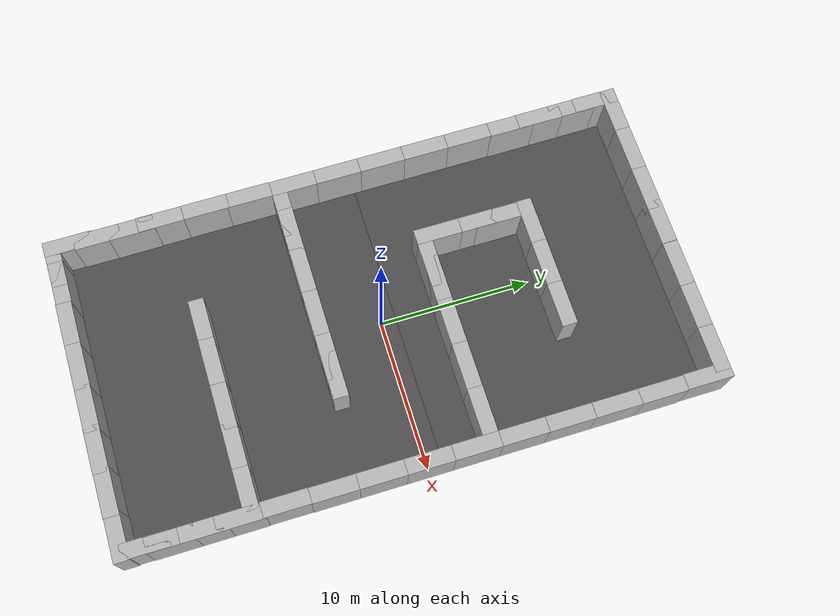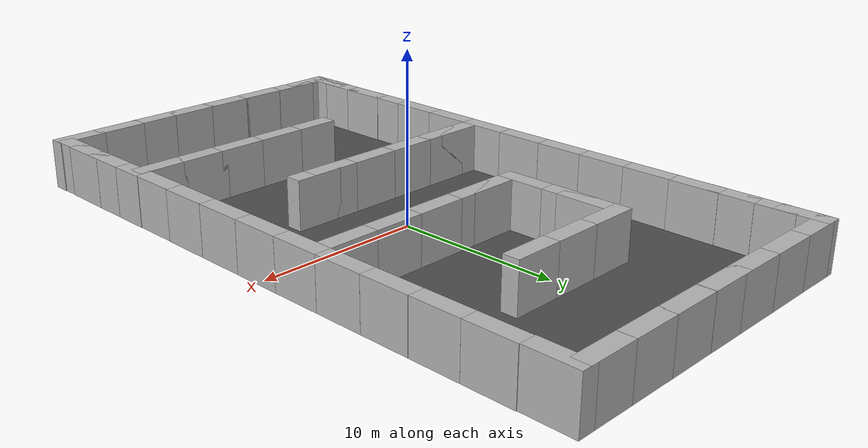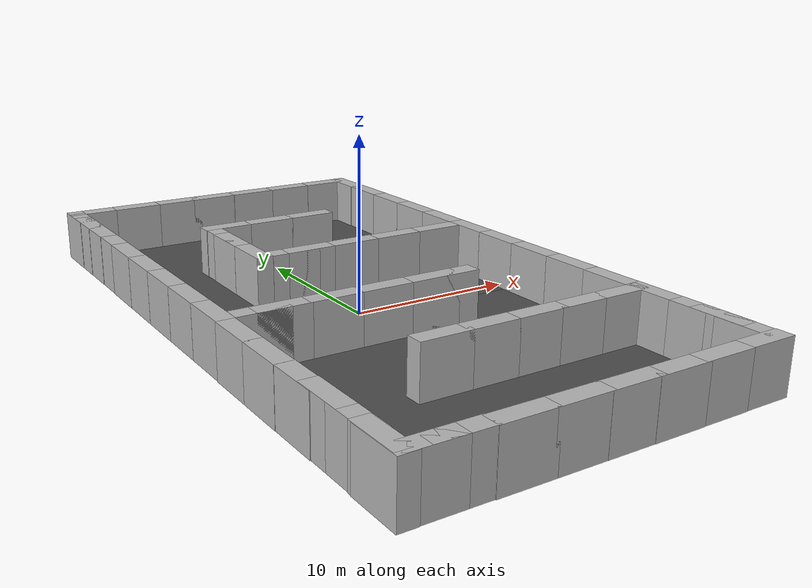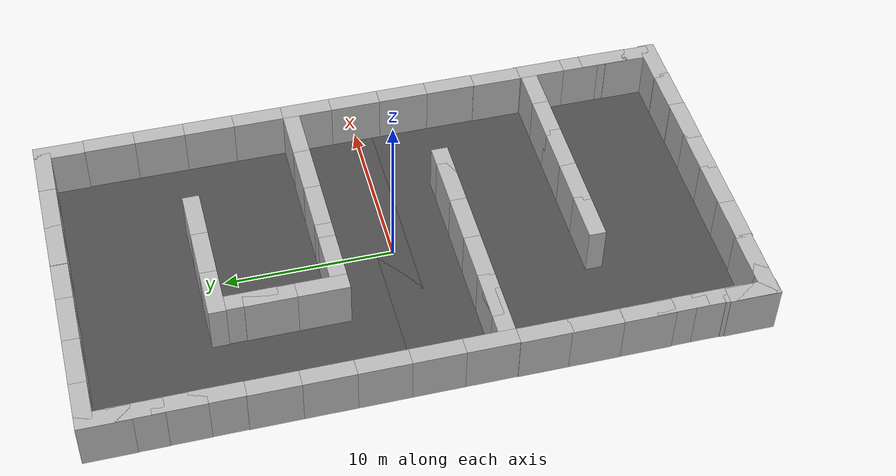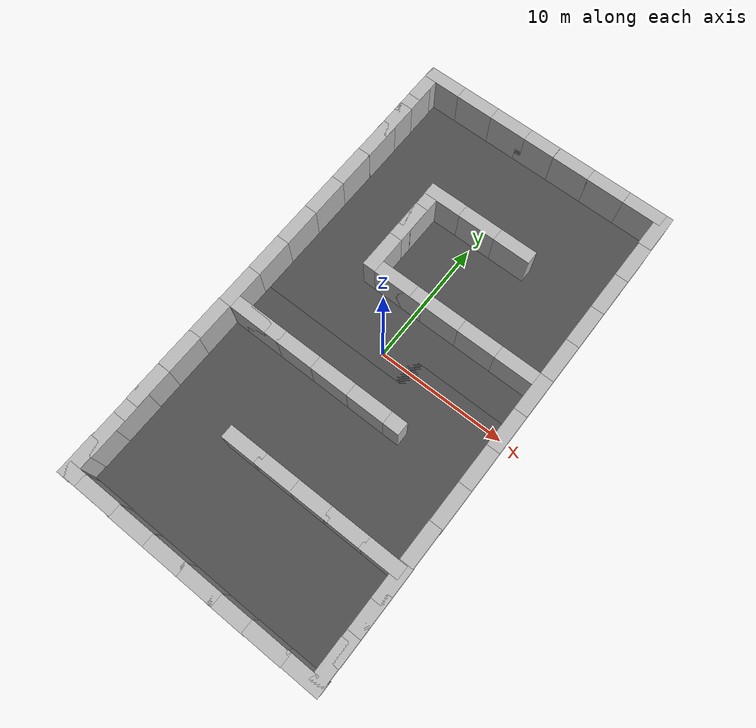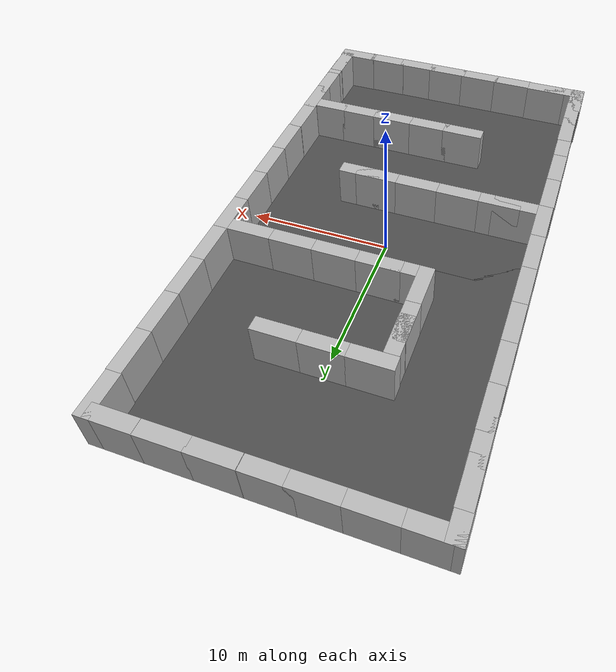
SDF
<sdf version="1.6">
 <world name="default">
  <light name="sun" type="directional">
   <pose>0 0 10 0 -0 0</pose>
   <diffuse>0.8 0.8 0.8 1</diffuse>
   <specular>0.2 0.2 0.2 1</specular>
   <attenuation>
    <range>1000</range>
    <constant>0.9</constant>
    <linear>0.01</linear>
    <quadratic>0.001</quadratic>
   </attenuation>
   <direction>-0.5 0.1 -0.9</direction>
  </light>
  <scene><ambient>0.4 0.4 0.4 1</ambient><background>0.7 0.7 0.7 1</background><shadows>1</shadows></scene>
  <spherical_coordinates>
   <surface_model>EARTH_WGS84</surface_model>
   <latitude_deg>0</latitude_deg>
   <longitude_deg>0</longitude_deg>
   <elevation>0</elevation>
   <heading_deg>0</heading_deg>
  </spherical_coordinates>
  <plugin name="ros_interface_plugin" filename="librotors_gazebo_ros_interface_plugin.so"/>
  <gravity>0 0 -9.8</gravity>
  <magnetic_field>6e-06 2.3e-05 -4.2e-05</magnetic_field>
  <atmosphere type="adiabatic"/>
  <audio><device>default</device></audio>
  <physics name="default_physics" default="0" type="ode">
   <max_step_size>0.001</max_step_size>
   <real_time_factor>1</real_time_factor>
   <real_time_update_rate>1000</real_time_update_rate>
  </physics>
  <model name="asphalt_plane_clone_clone_clone_0_clone">
   <static>1</static>
   <link name="link">
    <collision name="collision"><geometry><box><size>20 20 0.1</size></box></geometry></collision>
    <visual name="visual">
     <cast_shadows>0</cast_shadows>
     <geometry><box><size>20 20 0.1</size></box></geometry>
     <material>
      <script>
       <uri>model://asphalt_plane/materials/scripts</uri>
       <uri>model://asphalt_plane/materials/textures</uri>
       <name>vrc/asphalt</name>
      </script>
     </material>
    </visual>
    <velocity_decay><linear>0</linear><angular>0</angular></velocity_decay>
   </link>
   <pose>0 9 0 0 -0 0</pose>
  </model>
  <model name="brick_box_3x1x3_14_clone_3_clone_clone_2">
   <static>1</static>
   <link name="chassis">
    <pose>0 0 1.5 0 -0 0</pose>
    <collision name="collision"><geometry><box><size>3 1 3</size></box></geometry></collision>
    <visual name="visual">
     <geometry><mesh><uri>model://brick_box_3x1x3/meshes/simple_box.dae</uri><scale>3 1 3</scale></mesh></geometry>
     <material>
      <script>
       <uri>model://brick_box_3x1x3/materials/scripts</uri>
       <uri>model://brick_box_3x1x3/materials/textures</uri>
       <name>BrickBox/Diffuse</name>
      </script>
     </material>
    </visual>
    <velocity_decay><linear>0</linear><angular>0</angular></velocity_decay>
   </link>
   <pose>10 0 0 0 -0 1.57</pose>
  </model>
  <model name="brick_box_3x1x3_14_clone_3_clone_clone_7">
   <static>1</static>
   <link name="chassis">
    <pose>0 0 1.5 0 -0 0</pose>
    <collision name="collision"><geometry><box><size>3 1 3</size></box></geometry></collision>
    <visual name="visual">
     <geometry><mesh><uri>model://brick_box_3x1x3/meshes/simple_box.dae</uri><scale>3 1 3</scale></mesh></geometry>
     <material>
      <script>
       <uri>model://brick_box_3x1x3/materials/scripts</uri>
       <uri>model://brick_box_3x1x3/materials/textures</uri>
       <name>BrickBox/Diffuse</name>
      </script>
     </material>
    </visual>
    <velocity_decay><linear>0</linear><angular>0</angular></velocity_decay>
   </link>
   <pose>-10 6 0 0 -0 1.57</pose>
  </model>
  <model name="brick_box_3x1x3_14_clone_3_clone_clone_7_clone">
   <static>1</static>
   <link name="chassis">
    <pose>0 0 1.5 0 -0 0</pose>
    <collision name="collision"><geometry><box><size>3 1 3</size></box></geometry></collision>
    <visual name="visual">
     <geometry><mesh><uri>model://brick_box_3x1x3/meshes/simple_box.dae</uri><scale>3 1 3</scale></mesh></geometry>
     <material>
      <script>
       <uri>model://brick_box_3x1x3/materials/scripts</uri>
       <uri>model://brick_box_3x1x3/materials/textures</uri>
       <name>BrickBox/Diffuse</name>
      </script>
     </material>
    </visual>
    <velocity_decay><linear>0</linear><angular>0</angular></velocity_decay>
   </link>
   <pose>-10 3 0 0 -0 1.57</pose>
  </model>
  <model name="brick_box_3x1x3_14_clone_3_clone_clone_7_clone_0">
   <static>1</static>
   <link name="chassis">
    <pose>0 0 1.5 0 -0 0</pose>
    <collision name="collision"><geometry><box><size>3 1 3</size></box></geometry></collision>
    <visual name="visual">
     <geometry><mesh><uri>model://brick_box_3x1x3/meshes/simple_box.dae</uri><scale>3 1 3</scale></mesh></geometry>
     <material>
      <script>
       <uri>model://brick_box_3x1x3/materials/scripts</uri>
       <uri>model://brick_box_3x1x3/materials/textures</uri>
       <name>BrickBox/Diffuse</name>
      </script>
     </material>
    </visual>
    <velocity_decay><linear>0</linear><angular>0</angular></velocity_decay>
   </link>
   <pose>-10 0 0 0 -0 1.57</pose>
  </model>
  <model name="brick_box_3x1x3_14_clone_3_clone_clone_7_clone_1">
   <static>1</static>
   <link name="chassis">
    <pose>0 0 1.5 0 -0 0</pose>
    <collision name="collision"><geometry><box><size>3 1 3</size></box></geometry></collision>
    <visual name="visual">
     <geometry><mesh><uri>model://brick_box_3x1x3/meshes/simple_box.dae</uri><scale>3 1 3</scale></mesh></geometry>
     <material>
      <script>
       <uri>model://brick_box_3x1x3/materials/scripts</uri>
       <uri>model://brick_box_3x1x3/materials/textures</uri>
       <name>BrickBox/Diffuse</name>
      </script>
     </material>
    </visual>
    <velocity_decay><linear>0</linear><angular>0</angular></velocity_decay>
   </link>
   <pose>-10 -3 0 0 -0 1.57</pose>
  </model>
  <model name="brick_box_3x1x3_0_clone_5_clone_5_clone_0_clone_clone">
   <static>1</static>
   <link name="chassis">
    <pose>0 0 1.5 0 -0 0</pose>
    <collision name="collision"><geometry><box><size>3 1 3</size></box></geometry></collision>
    <visual name="visual">
     <geometry><mesh><uri>model://brick_box_3x1x3/meshes/simple_box.dae</uri><scale>3 1 3</scale></mesh></geometry>
     <material>
      <script>
       <uri>model://brick_box_3x1x3/materials/scripts</uri>
       <uri>model://brick_box_3x1x3/materials/textures</uri>
       <name>BrickBox/Diffuse</name>
      </script>
     </material>
    </visual>
    <velocity_decay><linear>0</linear><angular>0</angular></velocity_decay>
   </link>
   <pose>-1 4 0 0 -0 0</pose>
  </model>
  <model name="brick_box_3x1x3_0_clone_5_clone_5_clone_0_clone_clone_0">
   <static>1</static>
   <link name="chassis">
    <pose>0 0 1.5 0 -0 0</pose>
    <collision name="collision"><geometry><box><size>3 1 3</size></box></geometry></collision>
    <visual name="visual">
     <geometry><mesh><uri>model://brick_box_3x1x3/meshes/simple_box.dae</uri><scale>3 1 3</scale></mesh></geometry>
     <material>
      <script>
       <uri>model://brick_box_3x1x3/materials/scripts</uri>
       <uri>model://brick_box_3x1x3/materials/textures</uri>
       <name>BrickBox/Diffuse</name>
      </script>
     </material>
    </visual>
    <velocity_decay><linear>0</linear><angular>0</angular></velocity_decay>
   </link>
   <pose>2 4 0 0 -0 0</pose>
  </model>
  <model name="brick_box_3x1x3_0_clone_5_clone_5_clone_0_clone_clone_1">
   <static>1</static>
   <link name="chassis">
    <pose>0 0 1.5 0 -0 0</pose>
    <collision name="collision"><geometry><box><size>3 1 3</size></box></geometry></collision>
    <visual name="visual">
     <geometry><mesh><uri>model://brick_box_3x1x3/meshes/simple_box.dae</uri><scale>3 1 3</scale></mesh></geometry>
     <material>
      <script>
       <uri>model://brick_box_3x1x3/materials/scripts</uri>
       <uri>model://brick_box_3x1x3/materials/textures</uri>
       <name>BrickBox/Diffuse</name>
      </script>
     </material>
    </visual>
    <velocity_decay><linear>0</linear><angular>0</angular></velocity_decay>
   </link>
   <pose>5 4 0 0 -0 0</pose>
  </model>
  <model name="brick_box_3x1x3_0_clone_5_clone_5_clone_3_clone_3_clone">
   <static>1</static>
   <link name="chassis">
    <pose>0 0 1.5 0 -0 0</pose>
    <collision name="collision"><geometry><box><size>3 1 3</size></box></geometry></collision>
    <visual name="visual">
     <geometry><mesh><uri>model://brick_box_3x1x3/meshes/simple_box.dae</uri><scale>3 1 3</scale></mesh></geometry>
     <material>
      <script>
       <uri>model://brick_box_3x1x3/materials/scripts</uri>
       <uri>model://brick_box_3x1x3/materials/textures</uri>
       <name>BrickBox/Diffuse</name>
      </script>
     </material>
    </visual>
    <velocity_decay><linear>0</linear><angular>0</angular></velocity_decay>
   </link>
   <pose>-1 -4 0 0 -0 0</pose>
  </model>
  <model name="brick_box_3x1x3_0_clone_5_clone_5_clone_3_clone_3_clone_0">
   <static>1</static>
   <link name="chassis">
    <pose>0 0 1.5 0 -0 0</pose>
    <collision name="collision"><geometry><box><size>3 1 3</size></box></geometry></collision>
    <visual name="visual">
     <geometry><mesh><uri>model://brick_box_3x1x3/meshes/simple_box.dae</uri><scale>3 1 3</scale></mesh></geometry>
     <material>
      <script>
       <uri>model://brick_box_3x1x3/materials/scripts</uri>
       <uri>model://brick_box_3x1x3/materials/textures</uri>
       <name>BrickBox/Diffuse</name>
      </script>
     </material>
    </visual>
    <velocity_decay><linear>0</linear><angular>0</angular></velocity_decay>
   </link>
   <pose>2 -4 0 0 -0 0</pose>
  </model>
  <model name="brick_box_3x1x3_0_clone_5_clone_5_clone_0_clone_clone_1_clone">
   <static>1</static>
   <link name="chassis">
    <pose>0 0 1.5 0 -0 0</pose>
    <collision name="collision"><geometry><box><size>3 1 3</size></box></geometry></collision>
    <visual name="visual">
     <geometry><mesh><uri>model://brick_box_3x1x3/meshes/simple_box.dae</uri><scale>3 1 3</scale></mesh></geometry>
     <material>
      <script>
       <uri>model://brick_box_3x1x3/materials/scripts</uri>
       <uri>model://brick_box_3x1x3/materials/textures</uri>
       <name>BrickBox/Diffuse</name>
      </script>
     </material>
    </visual>
    <velocity_decay><linear>0</linear><angular>0</angular></velocity_decay>
   </link>
   <pose>8 4 0 0 -0 0</pose>
  </model>
  <model name="brick_box_3x1x3_14_clone_3_clone_clone_2_clone">
   <static>1</static>
   <link name="chassis">
    <pose>0 0 1.5 0 -0 0</pose>
    <collision name="collision"><geometry><box><size>3 1 3</size></box></geometry></collision>
    <visual name="visual">
     <geometry><mesh><uri>model://brick_box_3x1x3/meshes/simple_box.dae</uri><scale>3 1 3</scale></mesh></geometry>
     <material>
      <script>
       <uri>model://brick_box_3x1x3/materials/scripts</uri>
       <uri>model://brick_box_3x1x3/materials/textures</uri>
       <name>BrickBox/Diffuse</name>
      </script>
     </material>
    </visual>
    <velocity_decay><linear>0</linear><angular>0</angular></velocity_decay>
   </link>
   <pose>10 -3 0 0 -0 1.57</pose>
  </model>
  <model name="brick_box_3x1x3_14_clone_3_clone_clone_2_clone_0">
   <static>1</static>
   <link name="chassis">
    <pose>0 0 1.5 0 -0 0</pose>
    <collision name="collision"><geometry><box><size>3 1 3</size></box></geometry></collision>
    <visual name="visual">
     <geometry><mesh><uri>model://brick_box_3x1x3/meshes/simple_box.dae</uri><scale>3 1 3</scale></mesh></geometry>
     <material>
      <script>
       <uri>model://brick_box_3x1x3/materials/scripts</uri>
       <uri>model://brick_box_3x1x3/materials/textures</uri>
       <name>BrickBox/Diffuse</name>
      </script>
     </material>
    </visual>
    <velocity_decay><linear>0</linear><angular>0</angular></velocity_decay>
   </link>
   <pose>10 -6 0 0 -0 1.57</pose>
  </model>
  <model name="brick_box_3x1x3_14_clone_3_clone_clone_2_clone_1">
   <static>1</static>
   <link name="chassis">
    <pose>0 0 1.5 0 -0 0</pose>
    <collision name="collision"><geometry><box><size>3 1 3</size></box></geometry></collision>
    <visual name="visual">
     <geometry><mesh><uri>model://brick_box_3x1x3/meshes/simple_box.dae</uri><scale>3 1 3</scale></mesh></geometry>
     <material>
      <script>
       <uri>model://brick_box_3x1x3/materials/scripts</uri>
       <uri>model://brick_box_3x1x3/materials/textures</uri>
       <name>BrickBox/Diffuse</name>
      </script>
     </material>
    </visual>
    <velocity_decay><linear>0</linear><angular>0</angular></velocity_decay>
   </link>
   <pose>10 3 0 0 -0 1.57</pose>
  </model>
  <model name="brick_box_3x1x3_14_clone_3_clone_clone_2_clone_2">
   <static>1</static>
   <link name="chassis">
    <pose>0 0 1.5 0 -0 0</pose>
    <collision name="collision"><geometry><box><size>3 1 3</size></box></geometry></collision>
    <visual name="visual">
     <geometry><mesh><uri>model://brick_box_3x1x3/meshes/simple_box.dae</uri><scale>3 1 3</scale></mesh></geometry>
     <material>
      <script>
       <uri>model://brick_box_3x1x3/materials/scripts</uri>
       <uri>model://brick_box_3x1x3/materials/textures</uri>
       <name>BrickBox/Diffuse</name>
      </script>
     </material>
    </visual>
    <velocity_decay><linear>0</linear><angular>0</angular></velocity_decay>
   </link>
   <pose>10 6 0 0 -0 1.57</pose>
  </model>
  <model name="brick_box_3x1x3_0_clone_5_clone_5_clone_3_clone_3_clone_clone">
   <static>1</static>
   <link name="chassis">
    <pose>0 0 1.5 0 -0 0</pose>
    <collision name="collision"><geometry><box><size>3 1 3</size></box></geometry></collision>
    <visual name="visual">
     <geometry><mesh><uri>model://brick_box_3x1x3/meshes/simple_box.dae</uri><scale>3 1 3</scale></mesh></geometry>
     <material>
      <script>
       <uri>model://brick_box_3x1x3/materials/scripts</uri>
       <uri>model://brick_box_3x1x3/materials/textures</uri>
       <name>BrickBox/Diffuse</name>
      </script>
     </material>
    </visual>
    <velocity_decay><linear>0</linear><angular>0</angular></velocity_decay>
   </link>
   <pose>-4 -4 0 0 -0 0</pose>
  </model>
  <model name="brick_box_3x1x3_14_clone_3_clone_clone_9_clone">
   <static>1</static>
   <link name="chassis">
    <pose>0 0 1.5 0 -0 0</pose>
    <collision name="collision"><geometry><box><size>3 1 3</size></box></geometry></collision>
    <visual name="visual">
     <geometry><mesh><uri>model://brick_box_3x1x3/meshes/simple_box.dae</uri><scale>3 1 3</scale></mesh></geometry>
     <material>
      <script>
       <uri>model://brick_box_3x1x3/materials/scripts</uri>
       <uri>model://brick_box_3x1x3/materials/textures</uri>
       <name>BrickBox/Diffuse</name>
      </script>
     </material>
    </visual>
    <velocity_decay><linear>0</linear><angular>0</angular></velocity_decay>
   </link>
   <pose>-4 5.00713 0 0 -0 1.57</pose>
  </model>
  <model name="brick_box_3x1x3_14_clone_3_clone_clone_9_clone_1">
   <static>1</static>
   <link name="chassis">
    <pose>0 0 1.5 0 -0 0</pose>
    <collision name="collision"><geometry><box><size>3 1 3</size></box></geometry></collision>
    <visual name="visual">
     <geometry><mesh><uri>model://brick_box_3x1x3/meshes/simple_box.dae</uri><scale>3 1 3</scale></mesh></geometry>
     <material>
      <script>
       <uri>model://brick_box_3x1x3/materials/scripts</uri>
       <uri>model://brick_box_3x1x3/materials/textures</uri>
       <name>BrickBox/Diffuse</name>
      </script>
     </material>
    </visual>
    <velocity_decay><linear>0</linear><angular>0</angular></velocity_decay>
   </link>
   <pose>-10 9 0 0 -0 1.57</pose>
  </model>
  <model name="brick_box_3x1x3_14_clone_3_clone_clone_9_clone_2">
   <static>1</static>
   <link name="chassis">
    <pose>0 0 1.5 0 -0 0</pose>
    <collision name="collision"><geometry><box><size>3 1 3</size></box></geometry></collision>
    <visual name="visual">
     <geometry><mesh><uri>model://brick_box_3x1x3/meshes/simple_box.dae</uri><scale>3 1 3</scale></mesh></geometry>
     <material>
      <script>
       <uri>model://brick_box_3x1x3/materials/scripts</uri>
       <uri>model://brick_box_3x1x3/materials/textures</uri>
       <name>BrickBox/Diffuse</name>
      </script>
     </material>
    </visual>
    <velocity_decay><linear>0</linear><angular>0</angular></velocity_decay>
   </link>
   <pose>-9.98285 11.9588 0 0 -0 1.57</pose>
  </model>
  <model name="brick_box_3x1x3_0_clone_5_clone_5_clone_0_clone_clone_2">
   <static>1</static>
   <link name="chassis">
    <pose>0 0 1.5 0 -0 0</pose>
    <collision name="collision"><geometry><box><size>3 1 3</size></box></geometry></collision>
    <visual name="visual">
     <geometry><mesh><uri>model://brick_box_3x1x3/meshes/simple_box.dae</uri><scale>3 1 3</scale></mesh></geometry>
     <material>
      <script>
       <uri>model://brick_box_3x1x3/materials/scripts</uri>
       <uri>model://brick_box_3x1x3/materials/textures</uri>
       <name>BrickBox/Diffuse</name>
      </script>
     </material>
    </visual>
    <velocity_decay><linear>0</linear><angular>0</angular></velocity_decay>
   </link>
   <pose>-6 19 0 0 -0 0</pose>
  </model>
  <model name="brick_box_3x1x3_0_clone_5_clone_5_clone_0_clone_clone_3">
   <static>1</static>
   <link name="chassis">
    <pose>0 0 1.5 0 -0 0</pose>
    <collision name="collision"><geometry><box><size>3 1 3</size></box></geometry></collision>
    <visual name="visual">
     <geometry><mesh><uri>model://brick_box_3x1x3/meshes/simple_box.dae</uri><scale>3 1 3</scale></mesh></geometry>
     <material>
      <script>
       <uri>model://brick_box_3x1x3/materials/scripts</uri>
       <uri>model://brick_box_3x1x3/materials/textures</uri>
       <name>BrickBox/Diffuse</name>
      </script>
     </material>
    </visual>
    <velocity_decay><linear>0</linear><angular>0</angular></velocity_decay>
   </link>
   <pose>-9 19 0 0 -0 0</pose>
  </model>
  <model name="brick_box_3x1x3_14_clone_3_clone_clone_9_clone_2_clone">
   <static>1</static>
   <link name="chassis">
    <pose>0 0 1.5 0 -0 0</pose>
    <collision name="collision"><geometry><box><size>3 1 3</size></box></geometry></collision>
    <visual name="visual">
     <geometry><mesh><uri>model://brick_box_3x1x3/meshes/simple_box.dae</uri><scale>3 1 3</scale></mesh></geometry>
     <material>
      <script>
       <uri>model://brick_box_3x1x3/materials/scripts</uri>
       <uri>model://brick_box_3x1x3/materials/textures</uri>
       <name>BrickBox/Diffuse</name>
      </script>
     </material>
    </visual>
    <velocity_decay><linear>0</linear><angular>0</angular></velocity_decay>
   </link>
   <pose>-9.99793 14 0 0 -0 1.57</pose>
  </model>
  <model name="brick_box_3x1x3_0_clone_5_clone_5_clone_0_clone_clone_4">
   <static>1</static>
   <link name="chassis">
    <pose>0 0 1.5 0 -0 0</pose>
    <collision name="collision"><geometry><box><size>3 1 3</size></box></geometry></collision>
    <visual name="visual">
     <geometry><mesh><uri>model://brick_box_3x1x3/meshes/simple_box.dae</uri><scale>3 1 3</scale></mesh></geometry>
     <material>
      <script>
       <uri>model://brick_box_3x1x3/materials/scripts</uri>
       <uri>model://brick_box_3x1x3/materials/textures</uri>
       <name>BrickBox/Diffuse</name>
      </script>
     </material>
    </visual>
    <velocity_decay><linear>0</linear><angular>0</angular></velocity_decay>
   </link>
   <pose>-0.508766 19 0 0 -0 0</pose>
  </model>
  <model name="brick_box_3x1x3_0_clone_5_clone_5_clone_0_clone_clone_4_clone">
   <static>1</static>
   <link name="chassis">
    <pose>0 0 1.5 0 -0 0</pose>
    <collision name="collision"><geometry><box><size>3 1 3</size></box></geometry></collision>
    <visual name="visual">
     <geometry><mesh><uri>model://brick_box_3x1x3/meshes/simple_box.dae</uri><scale>3 1 3</scale></mesh></geometry>
     <material>
      <script>
       <uri>model://brick_box_3x1x3/materials/scripts</uri>
       <uri>model://brick_box_3x1x3/materials/textures</uri>
       <name>BrickBox/Diffuse</name>
      </script>
     </material>
    </visual>
    <velocity_decay><linear>0</linear><angular>0</angular></velocity_decay>
   </link>
   <pose>-3 19 0 0 -0 0</pose>
  </model>
  <model name="brick_box_3x1x3_0_clone_5_clone_5_clone_0_clone_clone_4_clone_clone">
   <static>1</static>
   <link name="chassis">
    <pose>0 0 1.5 0 -0 0</pose>
    <collision name="collision"><geometry><box><size>3 1 3</size></box></geometry></collision>
    <visual name="visual">
     <geometry><mesh><uri>model://brick_box_3x1x3/meshes/simple_box.dae</uri><scale>3 1 3</scale></mesh></geometry>
     <material>
      <script>
       <uri>model://brick_box_3x1x3/materials/scripts</uri>
       <uri>model://brick_box_3x1x3/materials/textures</uri>
       <name>BrickBox/Diffuse</name>
      </script>
     </material>
    </visual>
    <velocity_decay><linear>0</linear><angular>0</angular></velocity_decay>
   </link>
   <pose>2.51486 19 0 0 -0 0</pose>
  </model>
  <model name="brick_box_3x1x3_0_clone_5_clone_5_clone_0_clone_clone_4_clone_clone_0">
   <static>1</static>
   <link name="chassis">
    <pose>0 0 1.5 0 -0 0</pose>
    <collision name="collision"><geometry><box><size>3 1 3</size></box></geometry></collision>
    <visual name="visual">
     <geometry><mesh><uri>model://brick_box_3x1x3/meshes/simple_box.dae</uri><scale>3 1 3</scale></mesh></geometry>
     <material>
      <script>
       <uri>model://brick_box_3x1x3/materials/scripts</uri>
       <uri>model://brick_box_3x1x3/materials/textures</uri>
       <name>BrickBox/Diffuse</name>
      </script>
     </material>
    </visual>
    <velocity_decay><linear>0</linear><angular>0</angular></velocity_decay>
   </link>
   <pose>5.42915 19 0 0 -0 0</pose>
  </model>
  <model name="brick_box_3x1x3_0_clone_5_clone_5_clone_0_clone_clone_4_clone_clone_1">
   <static>1</static>
   <link name="chassis">
    <pose>0 0 1.5 0 -0 0</pose>
    <collision name="collision"><geometry><box><size>3 1 3</size></box></geometry></collision>
    <visual name="visual">
     <geometry><mesh><uri>model://brick_box_3x1x3/meshes/simple_box.dae</uri><scale>3 1 3</scale></mesh></geometry>
     <material>
      <script>
       <uri>model://brick_box_3x1x3/materials/scripts</uri>
       <uri>model://brick_box_3x1x3/materials/textures</uri>
       <name>BrickBox/Diffuse</name>
      </script>
     </material>
    </visual>
    <velocity_decay><linear>0</linear><angular>0</angular></velocity_decay>
   </link>
   <pose>8.43317 19 0 0 -0 0</pose>
  </model>
  <model name="brick_box_3x1x3_14_clone_3_clone_clone_2_clone_2_clone">
   <static>1</static>
   <link name="chassis">
    <pose>0 0 1.5 0 -0 0</pose>
    <collision name="collision"><geometry><box><size>3 1 3</size></box></geometry></collision>
    <visual name="visual">
     <geometry><mesh><uri>model://brick_box_3x1x3/meshes/simple_box.dae</uri><scale>3 1 3</scale></mesh></geometry>
     <material>
      <script>
       <uri>model://brick_box_3x1x3/materials/scripts</uri>
       <uri>model://brick_box_3x1x3/materials/textures</uri>
       <name>BrickBox/Diffuse</name>
      </script>
     </material>
    </visual>
    <velocity_decay><linear>0</linear><angular>0</angular></velocity_decay>
   </link>
   <pose>10 9 0 0 -0 1.57</pose>
  </model>
  <model name="brick_box_3x1x3_14_clone_3_clone_clone_2_clone_2_clone_0">
   <static>1</static>
   <link name="chassis">
    <pose>0 0 1.5 0 -0 0</pose>
    <collision name="collision"><geometry><box><size>3 1 3</size></box></geometry></collision>
    <visual name="visual">
     <geometry><mesh><uri>model://brick_box_3x1x3/meshes/simple_box.dae</uri><scale>3 1 3</scale></mesh></geometry>
     <material>
      <script>
       <uri>model://brick_box_3x1x3/materials/scripts</uri>
       <uri>model://brick_box_3x1x3/materials/textures</uri>
       <name>BrickBox/Diffuse</name>
      </script>
     </material>
    </visual>
    <velocity_decay><linear>0</linear><angular>0</angular></velocity_decay>
   </link>
   <pose>10 12 0 0 -0 1.57</pose>
  </model>
  <model name="brick_box_3x1x3_14_clone_3_clone_clone_2_clone_2_clone_1">
   <static>1</static>
   <link name="chassis">
    <pose>0 0 1.5 0 -0 0</pose>
    <collision name="collision"><geometry><box><size>3 1 3</size></box></geometry></collision>
    <visual name="visual">
     <geometry><mesh><uri>model://brick_box_3x1x3/meshes/simple_box.dae</uri><scale>3 1 3</scale></mesh></geometry>
     <material>
      <script>
       <uri>model://brick_box_3x1x3/materials/scripts</uri>
       <uri>model://brick_box_3x1x3/materials/textures</uri>
       <name>BrickBox/Diffuse</name>
      </script>
     </material>
    </visual>
    <velocity_decay><linear>0</linear><angular>0</angular></velocity_decay>
   </link>
   <pose>10 15 0 0 -0 1.57</pose>
  </model>
  <model name="brick_box_3x1x3_14_clone_3_clone_clone_2_clone_2_clone_2">
   <static>1</static>
   <link name="chassis">
    <pose>0 0 1.5 0 -0 0</pose>
    <collision name="collision"><geometry><box><size>3 1 3</size></box></geometry></collision>
    <visual name="visual">
     <geometry><mesh><uri>model://brick_box_3x1x3/meshes/simple_box.dae</uri><scale>3 1 3</scale></mesh></geometry>
     <material>
      <script>
       <uri>model://brick_box_3x1x3/materials/scripts</uri>
       <uri>model://brick_box_3x1x3/materials/textures</uri>
       <name>BrickBox/Diffuse</name>
      </script>
     </material>
    </visual>
    <velocity_decay><linear>0</linear><angular>0</angular></velocity_decay>
   </link>
   <pose>9.97623 -8.94245 0 0 -0 1.57</pose>
  </model>
  <model name="brick_box_3x1x3_14_clone_3_clone_clone_2_clone_2_clone_3">
   <static>1</static>
   <link name="chassis">
    <pose>0 0 1.5 0 -0 0</pose>
    <collision name="collision"><geometry><box><size>3 1 3</size></box></geometry></collision>
    <visual name="visual">
     <geometry><mesh><uri>model://brick_box_3x1x3/meshes/simple_box.dae</uri><scale>3 1 3</scale></mesh></geometry>
     <material>
      <script>
       <uri>model://brick_box_3x1x3/materials/scripts</uri>
       <uri>model://brick_box_3x1x3/materials/textures</uri>
       <name>BrickBox/Diffuse</name>
      </script>
     </material>
    </visual>
    <velocity_decay><linear>0</linear><angular>0</angular></velocity_decay>
   </link>
   <pose>10 -11.7604 0 0 -0 1.57</pose>
  </model>
  <model name="brick_box_3x1x3_14_clone_3_clone_clone_2_clone_2_clone_3_clone">
   <static>1</static>
   <link name="chassis">
    <pose>0 0 1.5 0 -0 0</pose>
    <collision name="collision"><geometry><box><size>3 1 3</size></box></geometry></collision>
    <visual name="visual">
     <geometry><mesh><uri>model://brick_box_3x1x3/meshes/simple_box.dae</uri><scale>3 1 3</scale></mesh></geometry>
     <material>
      <script>
       <uri>model://brick_box_3x1x3/materials/scripts</uri>
       <uri>model://brick_box_3x1x3/materials/textures</uri>
       <name>BrickBox/Diffuse</name>
      </script>
     </material>
    </visual>
    <velocity_decay><linear>0</linear><angular>0</angular></velocity_decay>
   </link>
   <pose>10 -13.9744 0 0 -0 1.57</pose>
  </model>
  <model name="brick_box_3x1x3_14_clone_3_clone_clone_7_clone_1_clone">
   <static>1</static>
   <link name="chassis">
    <pose>0 0 1.5 0 -0 0</pose>
    <collision name="collision"><geometry><box><size>3 1 3</size></box></geometry></collision>
    <visual name="visual">
     <geometry><mesh><uri>model://brick_box_3x1x3/meshes/simple_box.dae</uri><scale>3 1 3</scale></mesh></geometry>
     <material>
      <script>
       <uri>model://brick_box_3x1x3/materials/scripts</uri>
       <uri>model://brick_box_3x1x3/materials/textures</uri>
       <name>BrickBox/Diffuse</name>
      </script>
     </material>
    </visual>
    <velocity_decay><linear>0</linear><angular>0</angular></velocity_decay>
   </link>
   <pose>-10.0319 -5.98307 0 0 -0 1.57</pose>
  </model>
  <model name="brick_box_3x1x3_14_clone_3_clone_clone_7_clone_1_clone_0">
   <static>1</static>
   <link name="chassis">
    <pose>0 0 1.5 0 -0 0</pose>
    <collision name="collision"><geometry><box><size>3 1 3</size></box></geometry></collision>
    <visual name="visual">
     <geometry><mesh><uri>model://brick_box_3x1x3/meshes/simple_box.dae</uri><scale>3 1 3</scale></mesh></geometry>
     <material>
      <script>
       <uri>model://brick_box_3x1x3/materials/scripts</uri>
       <uri>model://brick_box_3x1x3/materials/textures</uri>
       <name>BrickBox/Diffuse</name>
      </script>
     </material>
    </visual>
    <velocity_decay><linear>0</linear><angular>0</angular></velocity_decay>
   </link>
   <pose>-10.0369 -8.88674 0 0 -0 1.57</pose>
  </model>
  <model name="brick_box_3x1x3_14_clone_3_clone_clone_7_clone_1_clone_1">
   <static>1</static>
   <link name="chassis">
    <pose>0 0 1.5 0 -0 0</pose>
    <collision name="collision"><geometry><box><size>3 1 3</size></box></geometry></collision>
    <visual name="visual">
     <geometry><mesh><uri>model://brick_box_3x1x3/meshes/simple_box.dae</uri><scale>3 1 3</scale></mesh></geometry>
     <material>
      <script>
       <uri>model://brick_box_3x1x3/materials/scripts</uri>
       <uri>model://brick_box_3x1x3/materials/textures</uri>
       <name>BrickBox/Diffuse</name>
      </script>
     </material>
    </visual>
    <velocity_decay><linear>0</linear><angular>0</angular></velocity_decay>
   </link>
   <pose>-10.0283 -11.8888 0 0 -0 1.57</pose>
  </model>
  <model name="brick_box_3x1x3_14_clone_3_clone_clone_7_clone_1_clone_1_clone">
   <static>1</static>
   <link name="chassis">
    <pose>0 0 1.5 0 -0 0</pose>
    <collision name="collision"><geometry><box><size>3 1 3</size></box></geometry></collision>
    <visual name="visual">
     <geometry><mesh><uri>model://brick_box_3x1x3/meshes/simple_box.dae</uri><scale>3 1 3</scale></mesh></geometry>
     <material>
      <script>
       <uri>model://brick_box_3x1x3/materials/scripts</uri>
       <uri>model://brick_box_3x1x3/materials/textures</uri>
       <name>BrickBox/Diffuse</name>
      </script>
     </material>
    </visual>
    <velocity_decay><linear>0</linear><angular>0</angular></velocity_decay>
   </link>
   <pose>-9.99682 -13.8072 0 0 -0 1.57</pose>
  </model>
  <model name="asphalt_plane_clone_clone_clone_0_clone_clone">
   <static>1</static>
   <link name="link">
    <collision name="collision"><geometry><box><size>20 20 0.1</size></box></geometry></collision>
    <visual name="visual">
     <cast_shadows>0</cast_shadows>
     <geometry><box><size>20 20 0.1</size></box></geometry>
     <material>
      <script>
       <uri>model://asphalt_plane/materials/scripts</uri>
       <uri>model://asphalt_plane/materials/textures</uri>
       <name>vrc/asphalt</name>
      </script>
     </material>
    </visual>
    <velocity_decay><linear>0</linear><angular>0</angular></velocity_decay>
   </link>
   <pose>0 -9 0 0 -0 0</pose>
  </model>
  <model name="brick_box_3x1x3_0_clone_5_clone_5_clone_3_clone_3_clone_clone_clone">
   <static>1</static>
   <link name="chassis">
    <pose>0 0 1.5 0 -0 0</pose>
    <collision name="collision"><geometry><box><size>3 1 3</size></box></geometry></collision>
    <visual name="visual">
     <geometry><mesh><uri>model://brick_box_3x1x3/meshes/simple_box.dae</uri><scale>3 1 3</scale></mesh></geometry>
     <material>
      <script>
       <uri>model://brick_box_3x1x3/materials/scripts</uri>
       <uri>model://brick_box_3x1x3/materials/textures</uri>
       <name>BrickBox/Diffuse</name>
      </script>
     </material>
    </visual>
    <velocity_decay><linear>0</linear><angular>0</angular></velocity_decay>
   </link>
   <pose>-6.88359 -4 0 0 -0 0</pose>
  </model>
  <model name="brick_box_3x1x3_0_clone_5_clone_5_clone_3_clone_3_clone_clone_clone_0">
   <static>1</static>
   <link name="chassis">
    <pose>0 0 1.5 0 -0 0</pose>
    <collision name="collision"><geometry><box><size>3 1 3</size></box></geometry></collision>
    <visual name="visual">
     <geometry><mesh><uri>model://brick_box_3x1x3/meshes/simple_box.dae</uri><scale>3 1 3</scale></mesh></geometry>
     <material>
      <script>
       <uri>model://brick_box_3x1x3/materials/scripts</uri>
       <uri>model://brick_box_3x1x3/materials/textures</uri>
       <name>BrickBox/Diffuse</name>
      </script>
     </material>
    </visual>
    <velocity_decay><linear>0</linear><angular>0</angular></velocity_decay>
   </link>
   <pose>-8 -4 0 0 -0 0</pose>
  </model>
  <model name="brick_box_3x1x3_0_clone_5_clone_5_clone_3_clone_3_clone_1_clone_7">
   <static>1</static>
   <link name="chassis">
    <pose>0 0 1.5 0 -0 0</pose>
    <collision name="collision"><geometry><box><size>3 1 3</size></box></geometry></collision>
    <visual name="visual">
     <geometry><mesh><uri>model://brick_box_3x1x3/meshes/simple_box.dae</uri><scale>3 1 3</scale></mesh></geometry>
     <material>
      <script>
       <uri>model://brick_box_3x1x3/materials/scripts</uri>
       <uri>model://brick_box_3x1x3/materials/textures</uri>
       <name>BrickBox/Diffuse</name>
      </script>
     </material>
    </visual>
    <velocity_decay><linear>0</linear><angular>0</angular></velocity_decay>
   </link>
   <pose>3.15039 -11 0 0 -0 0</pose>
  </model>
  <model name="brick_box_3x1x3_0_clone_5_clone_5_clone_3_clone_3_clone_1_clone_6_clone">
   <static>1</static>
   <link name="chassis">
    <pose>0 0 1.5 0 -0 0</pose>
    <collision name="collision"><geometry><box><size>3 1 3</size></box></geometry></collision>
    <visual name="visual">
     <geometry><mesh><uri>model://brick_box_3x1x3/meshes/simple_box.dae</uri><scale>3 1 3</scale></mesh></geometry>
     <material>
      <script>
       <uri>model://brick_box_3x1x3/materials/scripts</uri>
       <uri>model://brick_box_3x1x3/materials/textures</uri>
       <name>BrickBox/Diffuse</name>
      </script>
     </material>
    </visual>
    <velocity_decay><linear>0</linear><angular>0</angular></velocity_decay>
   </link>
   <pose>5.77817 -11 0 0 -0 0</pose>
  </model>
  <model name="brick_box_3x1x3_14_clone_3_clone_clone_2_clone_2_clone_3_clone_clone">
   <static>1</static>
   <link name="chassis">
    <pose>0 0 1.5 0 -0 0</pose>
    <collision name="collision"><geometry><box><size>3 1 3</size></box></geometry></collision>
    <visual name="visual">
     <geometry><mesh><uri>model://brick_box_3x1x3/meshes/simple_box.dae</uri><scale>3 1 3</scale></mesh></geometry>
     <material>
      <script>
       <uri>model://brick_box_3x1x3/materials/scripts</uri>
       <uri>model://brick_box_3x1x3/materials/textures</uri>
       <name>BrickBox/Diffuse</name>
      </script>
     </material>
    </visual>
    <velocity_decay><linear>0</linear><angular>0</angular></velocity_decay>
   </link>
   <pose>10 -16 0 0 -0 1.57</pose>
  </model>
  <model name="brick_box_3x1x3_0_clone_5_clone_5_clone_3_clone_3_clone_1_clone_6_clone_clone">
   <static>1</static>
   <link name="chassis">
    <pose>0 0 1.5 0 -0 0</pose>
    <collision name="collision"><geometry><box><size>3 1 3</size></box></geometry></collision>
    <visual name="visual">
     <geometry><mesh><uri>model://brick_box_3x1x3/meshes/simple_box.dae</uri><scale>3 1 3</scale></mesh></geometry>
     <material>
      <script>
       <uri>model://brick_box_3x1x3/materials/scripts</uri>
       <uri>model://brick_box_3x1x3/materials/textures</uri>
       <name>BrickBox/Diffuse</name>
      </script>
     </material>
    </visual>
    <velocity_decay><linear>0</linear><angular>0</angular></velocity_decay>
   </link>
   <pose>8.61781 -11 0 0 -0 0</pose>
  </model>
  <model name="brick_box_3x1x3_14_clone_3_clone_clone_7_clone_1_clone_1_clone_clone">
   <static>1</static>
   <link name="chassis">
    <pose>0 0 1.5 0 -0 0</pose>
    <collision name="collision"><geometry><box><size>3 1 3</size></box></geometry></collision>
    <visual name="visual">
     <geometry><mesh><uri>model://brick_box_3x1x3/meshes/simple_box.dae</uri><scale>3 1 3</scale></mesh></geometry>
     <material>
      <script>
       <uri>model://brick_box_3x1x3/materials/scripts</uri>
       <uri>model://brick_box_3x1x3/materials/textures</uri>
       <name>BrickBox/Diffuse</name>
      </script>
     </material>
    </visual>
    <velocity_decay><linear>0</linear><angular>0</angular></velocity_decay>
   </link>
   <pose>-10 -16.038 0 0 -0 1.57</pose>
  </model>
  <model name="brick_box_3x1x3_0_clone_5_clone_5_clone_3_clone_3_clone_1_clone_0">
   <static>1</static>
   <link name="chassis">
    <pose>0 0 1.5 0 -0 0</pose>
    <collision name="collision"><geometry><box><size>3 1 3</size></box></geometry></collision>
    <visual name="visual">
     <geometry><mesh><uri>model://brick_box_3x1x3/meshes/simple_box.dae</uri><scale>3 1 3</scale></mesh></geometry>
     <material>
      <script>
       <uri>model://brick_box_3x1x3/materials/scripts</uri>
       <uri>model://brick_box_3x1x3/materials/textures</uri>
       <name>BrickBox/Diffuse</name>
      </script>
     </material>
    </visual>
    <velocity_decay><linear>0</linear><angular>0</angular></velocity_decay>
   </link>
   <pose>-4.70975 -19 0 0 -0 0</pose>
  </model>
  <model name="brick_box_3x1x3_0_clone_5_clone_5_clone_3_clone_3_clone_1_clone_7_clone">
   <static>1</static>
   <link name="chassis">
    <pose>0 0 1.5 0 -0 0</pose>
    <collision name="collision"><geometry><box><size>3 1 3</size></box></geometry></collision>
    <visual name="visual">
     <geometry><mesh><uri>model://brick_box_3x1x3/meshes/simple_box.dae</uri><scale>3 1 3</scale></mesh></geometry>
     <material>
      <script>
       <uri>model://brick_box_3x1x3/materials/scripts</uri>
       <uri>model://brick_box_3x1x3/materials/textures</uri>
       <name>BrickBox/Diffuse</name>
      </script>
     </material>
    </visual>
    <velocity_decay><linear>0</linear><angular>0</angular></velocity_decay>
   </link>
   <pose>0.196525 -11 0 0 -0 0</pose>
  </model>
  <model name="brick_box_3x1x3_0_clone_5_clone_5_clone_3_clone_3_clone_1_clone_7_clone_0">
   <static>1</static>
   <link name="chassis">
    <pose>0 0 1.5 0 -0 0</pose>
    <collision name="collision"><geometry><box><size>3 1 3</size></box></geometry></collision>
    <visual name="visual">
     <geometry><mesh><uri>model://brick_box_3x1x3/meshes/simple_box.dae</uri><scale>3 1 3</scale></mesh></geometry>
     <material>
      <script>
       <uri>model://brick_box_3x1x3/materials/scripts</uri>
       <uri>model://brick_box_3x1x3/materials/textures</uri>
       <name>BrickBox/Diffuse</name>
      </script>
     </material>
    </visual>
    <velocity_decay><linear>0</linear><angular>0</angular></velocity_decay>
   </link>
   <pose>-2.5 -11 0 0 -0 0</pose>
  </model>
  <model name="brick_box_3x1x3_0_clone_5_clone_5_clone_0_clone_clone_clone">
   <static>1</static>
   <link name="chassis">
    <pose>0 0 1.5 0 -0 0</pose>
    <collision name="collision"><geometry><box><size>3 1 3</size></box></geometry></collision>
    <visual name="visual">
     <geometry><mesh><uri>model://brick_box_3x1x3/meshes/simple_box.dae</uri><scale>3 1 3</scale></mesh></geometry>
     <material>
      <script>
       <uri>model://brick_box_3x1x3/materials/scripts</uri>
       <uri>model://brick_box_3x1x3/materials/textures</uri>
       <name>BrickBox/Diffuse</name>
      </script>
     </material>
    </visual>
    <velocity_decay><linear>0</linear><angular>0</angular></velocity_decay>
   </link>
   <pose>-2 4 0 0 -0 0</pose>
  </model>
  <model name="brick_box_3x1x3_14_clone_3_clone_clone_9_clone_clone">
   <static>1</static>
   <link name="chassis">
    <pose>0 0 1.5 0 -0 0</pose>
    <collision name="collision"><geometry><box><size>3 1 3</size></box></geometry></collision>
    <visual name="visual">
     <geometry><mesh><uri>model://brick_box_3x1x3/meshes/simple_box.dae</uri><scale>3 1 3</scale></mesh></geometry>
     <material>
      <script>
       <uri>model://brick_box_3x1x3/materials/scripts</uri>
       <uri>model://brick_box_3x1x3/materials/textures</uri>
       <name>BrickBox/Diffuse</name>
      </script>
     </material>
    </visual>
    <velocity_decay><linear>0</linear><angular>0</angular></velocity_decay>
   </link>
   <pose>-4 8 0 0 -0 1.57</pose>
  </model>
  <model name="brick_box_3x1x3_0_clone_5_clone_5_clone_3_clone_3_clone_0_clone">
   <static>1</static>
   <link name="chassis">
    <pose>0 0 1.5 0 -0 0</pose>
    <collision name="collision"><geometry><box><size>3 1 3</size></box></geometry></collision>
    <visual name="visual">
     <geometry><mesh><uri>model://brick_box_3x1x3/meshes/simple_box.dae</uri><scale>3 1 3</scale></mesh></geometry>
     <material>
      <script>
       <uri>model://brick_box_3x1x3/materials/scripts</uri>
       <uri>model://brick_box_3x1x3/materials/textures</uri>
       <name>BrickBox/Diffuse</name>
      </script>
     </material>
    </visual>
    <velocity_decay><linear>0</linear><angular>0</angular></velocity_decay>
   </link>
   <pose>3.25 -4 0 0 -0 0</pose>
  </model>
  <model name="brick_box_3x1x3_0_clone_5_clone_5_clone_3_clone_3_clone_1_clone_0_clone">
   <static>1</static>
   <link name="chassis">
    <pose>0 0 1.5 0 -0 0</pose>
    <collision name="collision"><geometry><box><size>3 1 3</size></box></geometry></collision>
    <visual name="visual">
     <geometry><mesh><uri>model://brick_box_3x1x3/meshes/simple_box.dae</uri><scale>3 1 3</scale></mesh></geometry>
     <material>
      <script>
       <uri>model://brick_box_3x1x3/materials/scripts</uri>
       <uri>model://brick_box_3x1x3/materials/textures</uri>
       <name>BrickBox/Diffuse</name>
      </script>
     </material>
    </visual>
    <velocity_decay><linear>0</linear><angular>0</angular></velocity_decay>
   </link>
   <pose>-7.54489 -18.9605 0 0 -0 0</pose>
  </model>
  <model name="brick_box_3x1x3_0_clone_5_clone_5_clone_3_clone_3_clone_1_clone_0_clone_0">
   <static>1</static>
   <link name="chassis">
    <pose>0 0 1.5 0 -0 0</pose>
    <collision name="collision"><geometry><box><size>3 1 3</size></box></geometry></collision>
    <visual name="visual">
     <geometry><mesh><uri>model://brick_box_3x1x3/meshes/simple_box.dae</uri><scale>3 1 3</scale></mesh></geometry>
     <material>
      <script>
       <uri>model://brick_box_3x1x3/materials/scripts</uri>
       <uri>model://brick_box_3x1x3/materials/textures</uri>
       <name>BrickBox/Diffuse</name>
      </script>
     </material>
    </visual>
    <velocity_decay><linear>0</linear><angular>0</angular></velocity_decay>
   </link>
   <pose>-8.8884 -18.9643 0 0 -0 0</pose>
  </model>
  <model name="brick_box_3x1x3_0_clone_5_clone_5_clone_3_clone_3_clone_1_clone_0_clone_1">
   <static>1</static>
   <link name="chassis">
    <pose>0 0 1.5 0 -0 0</pose>
    <collision name="collision"><geometry><box><size>3 1 3</size></box></geometry></collision>
    <visual name="visual">
     <geometry><mesh><uri>model://brick_box_3x1x3/meshes/simple_box.dae</uri><scale>3 1 3</scale></mesh></geometry>
     <material>
      <script>
       <uri>model://brick_box_3x1x3/materials/scripts</uri>
       <uri>model://brick_box_3x1x3/materials/textures</uri>
       <name>BrickBox/Diffuse</name>
      </script>
     </material>
    </visual>
    <velocity_decay><linear>0</linear><angular>0</angular></velocity_decay>
   </link>
   <pose>-1.89881 -19 0 0 -0 0</pose>
  </model>
  <model name="brick_box_3x1x3_0_clone_5_clone_5_clone_3_clone_3_clone_1_clone_0_clone_2">
   <static>1</static>
   <link name="chassis">
    <pose>0 0 1.5 0 -0 0</pose>
    <collision name="collision"><geometry><box><size>3 1 3</size></box></geometry></collision>
    <visual name="visual">
     <geometry><mesh><uri>model://brick_box_3x1x3/meshes/simple_box.dae</uri><scale>3 1 3</scale></mesh></geometry>
     <material>
      <script>
       <uri>model://brick_box_3x1x3/materials/scripts</uri>
       <uri>model://brick_box_3x1x3/materials/textures</uri>
       <name>BrickBox/Diffuse</name>
      </script>
     </material>
    </visual>
    <velocity_decay><linear>0</linear><angular>0</angular></velocity_decay>
   </link>
   <pose>0.908639 -19.0072 0 0 -0 0</pose>
  </model>
  <model name="brick_box_3x1x3_0_clone_5_clone_5_clone_3_clone_3_clone_1_clone_0_clone_3">
   <static>1</static>
   <link name="chassis">
    <pose>0 0 1.5 0 -0 0</pose>
    <collision name="collision"><geometry><box><size>3 1 3</size></box></geometry></collision>
    <visual name="visual">
     <geometry><mesh><uri>model://brick_box_3x1x3/meshes/simple_box.dae</uri><scale>3 1 3</scale></mesh></geometry>
     <material>
      <script>
       <uri>model://brick_box_3x1x3/materials/scripts</uri>
       <uri>model://brick_box_3x1x3/materials/textures</uri>
       <name>BrickBox/Diffuse</name>
      </script>
     </material>
    </visual>
    <velocity_decay><linear>0</linear><angular>0</angular></velocity_decay>
   </link>
   <pose>3.54026 -19.0197 0 0 -0 0</pose>
  </model>
  <model name="brick_box_3x1x3_0_clone_5_clone_5_clone_3_clone_3_clone_1_clone_0_clone_4">
   <static>1</static>
   <link name="chassis">
    <pose>0 0 1.5 0 -0 0</pose>
    <collision name="collision"><geometry><box><size>3 1 3</size></box></geometry></collision>
    <visual name="visual">
     <geometry><mesh><uri>model://brick_box_3x1x3/meshes/simple_box.dae</uri><scale>3 1 3</scale></mesh></geometry>
     <material>
      <script>
       <uri>model://brick_box_3x1x3/materials/scripts</uri>
       <uri>model://brick_box_3x1x3/materials/textures</uri>
       <name>BrickBox/Diffuse</name>
      </script>
     </material>
    </visual>
    <velocity_decay><linear>0</linear><angular>0</angular></velocity_decay>
   </link>
   <pose>6.2814 -18.9984 0 0 -0 0</pose>
  </model>
  <model name="brick_box_3x1x3_0_clone_5_clone_5_clone_3_clone_3_clone_1_clone_0_clone_5">
   <static>1</static>
   <link name="chassis">
    <pose>0 0 1.5 0 -0 0</pose>
    <collision name="collision"><geometry><box><size>3 1 3</size></box></geometry></collision>
    <visual name="visual">
     <geometry><mesh><uri>model://brick_box_3x1x3/meshes/simple_box.dae</uri><scale>3 1 3</scale></mesh></geometry>
     <material>
      <script>
       <uri>model://brick_box_3x1x3/materials/scripts</uri>
       <uri>model://brick_box_3x1x3/materials/textures</uri>
       <name>BrickBox/Diffuse</name>
      </script>
     </material>
    </visual>
    <velocity_decay><linear>0</linear><angular>0</angular></velocity_decay>
   </link>
   <pose>9.02066 -18.9729 0 0 -0 0</pose>
  </model>
  <model name="brick_box_3x1x3_14_clone_3_clone_clone_2_clone_2_clone_3_clone_clone_clone">
   <static>1</static>
   <link name="chassis">
    <pose>0 0 1.5 0 -0 0</pose>
    <collision name="collision"><geometry><box><size>3 1 3</size></box></geometry></collision>
    <visual name="visual">
     <geometry><mesh><uri>model://brick_box_3x1x3/meshes/simple_box.dae</uri><scale>3 1 3</scale></mesh></geometry>
     <material>
      <script>
       <uri>model://brick_box_3x1x3/materials/scripts</uri>
       <uri>model://brick_box_3x1x3/materials/textures</uri>
       <name>BrickBox/Diffuse</name>
      </script>
     </material>
    </visual>
    <velocity_decay><linear>0</linear><angular>0</angular></velocity_decay>
   </link>
   <pose>9.97189 -17.4755 0 0 -0 1.57</pose>
  </model>
  <model name="brick_box_3x1x3_14_clone_3_clone_clone_2_clone_2_clone_3_clone_clone_clone_0">
   <static>1</static>
   <link name="chassis">
    <pose>0 0 1.5 0 -0 0</pose>
    <collision name="collision"><geometry><box><size>3 1 3</size></box></geometry></collision>
    <visual name="visual">
     <geometry><mesh><uri>model://brick_box_3x1x3/meshes/simple_box.dae</uri><scale>3 1 3</scale></mesh></geometry>
     <material>
      <script>
       <uri>model://brick_box_3x1x3/materials/scripts</uri>
       <uri>model://brick_box_3x1x3/materials/textures</uri>
       <name>BrickBox/Diffuse</name>
      </script>
     </material>
    </visual>
    <velocity_decay><linear>0</linear><angular>0</angular></velocity_decay>
   </link>
   <pose>-10.0333 -17.7301 0 0 -0 1.57</pose>
  </model>
  <model name="brick_box_3x1x3_14_clone_3_clone_clone_2_clone_2_clone_3_clone_clone_clone_1">
   <static>1</static>
   <link name="chassis">
    <pose>0 0 1.5 0 -0 0</pose>
    <collision name="collision"><geometry><box><size>3 1 3</size></box></geometry></collision>
    <visual name="visual">
     <geometry><mesh><uri>model://brick_box_3x1x3/meshes/simple_box.dae</uri><scale>3 1 3</scale></mesh></geometry>
     <material>
      <script>
       <uri>model://brick_box_3x1x3/materials/scripts</uri>
       <uri>model://brick_box_3x1x3/materials/textures</uri>
       <name>BrickBox/Diffuse</name>
      </script>
     </material>
    </visual>
    <velocity_decay><linear>0</linear><angular>0</angular></velocity_decay>
   </link>
   <pose>-10.0604 -17.9943 0 0 -0 1.57</pose>
  </model>
  <model name="brick_box_3x1x3_14_clone_3_clone_clone_9_clone_clone_clone">
   <static>1</static>
   <link name="chassis">
    <pose>0 0 1.5 0 -0 0</pose>
    <collision name="collision"><geometry><box><size>3 1 3</size></box></geometry></collision>
    <visual name="visual">
     <geometry><mesh><uri>model://brick_box_3x1x3/meshes/simple_box.dae</uri><scale>3 1 3</scale></mesh></geometry>
     <material>
      <script>
       <uri>model://brick_box_3x1x3/materials/scripts</uri>
       <uri>model://brick_box_3x1x3/materials/textures</uri>
       <name>BrickBox/Diffuse</name>
      </script>
     </material>
    </visual>
    <velocity_decay><linear>0</linear><angular>0</angular></velocity_decay>
   </link>
   <pose>-3.98119 9 0 0 -0 1.57</pose>
  </model>
  <model name="brick_box_3x1x3_0_clone_5_clone_5_clone_0_clone_clone_clone_0">
   <static>1</static>
   <link name="chassis">
    <pose>0 0 1.5 0 -0 0</pose>
    <collision name="collision"><geometry><box><size>3 1 3</size></box></geometry></collision>
    <visual name="visual">
     <geometry><mesh><uri>model://brick_box_3x1x3/meshes/simple_box.dae</uri><scale>3 1 3</scale></mesh></geometry>
     <material>
      <script>
       <uri>model://brick_box_3x1x3/materials/scripts</uri>
       <uri>model://brick_box_3x1x3/materials/textures</uri>
       <name>BrickBox/Diffuse</name>
      </script>
     </material>
    </visual>
    <velocity_decay><linear>0</linear><angular>0</angular></velocity_decay>
   </link>
   <pose>-3.01363 11 0 0 -0 0</pose>
  </model>
  <model name="brick_box_3x1x3_14_clone_3_clone_clone_2_clone_2_clone_1_clone">
   <static>1</static>
   <link name="chassis">
    <pose>0 0 1.5 0 -0 0</pose>
    <collision name="collision"><geometry><box><size>3 1 3</size></box></geometry></collision>
    <visual name="visual">
     <geometry><mesh><uri>model://brick_box_3x1x3/meshes/simple_box.dae</uri><scale>3 1 3</scale></mesh></geometry>
     <material>
      <script>
       <uri>model://brick_box_3x1x3/materials/scripts</uri>
       <uri>model://brick_box_3x1x3/materials/textures</uri>
       <name>BrickBox/Diffuse</name>
      </script>
     </material>
    </visual>
    <velocity_decay><linear>0</linear><angular>0</angular></velocity_decay>
   </link>
   <pose>9.96145 18 0 0 -0 1.57</pose>
  </model>
  <model name="brick_box_3x1x3_14_clone_3_clone_clone_2_clone_2_clone_1_clone_0">
   <static>1</static>
   <link name="chassis">
    <pose>0 0 1.5 0 -0 0</pose>
    <collision name="collision"><geometry><box><size>3 1 3</size></box></geometry></collision>
    <visual name="visual">
     <geometry><mesh><uri>model://brick_box_3x1x3/meshes/simple_box.dae</uri><scale>3 1 3</scale></mesh></geometry>
     <material>
      <script>
       <uri>model://brick_box_3x1x3/materials/scripts</uri>
       <uri>model://brick_box_3x1x3/materials/textures</uri>
       <name>BrickBox/Diffuse</name>
      </script>
     </material>
    </visual>
    <velocity_decay><linear>0</linear><angular>0</angular></velocity_decay>
   </link>
   <pose>-10.0314 18 0 0 -0 1.57</pose>
  </model>
  <model name="brick_box_3x1x3_0_clone_5_clone_5_clone_0_clone_clone_clone_clone">
   <static>1</static>
   <link name="chassis">
    <pose>0 0 1.5 0 -0 0</pose>
    <collision name="collision"><geometry><box><size>3 1 3</size></box></geometry></collision>
    <visual name="visual">
     <geometry><mesh><uri>model://brick_box_3x1x3/meshes/simple_box.dae</uri><scale>3 1 3</scale></mesh></geometry>
     <material>
      <script>
       <uri>model://brick_box_3x1x3/materials/scripts</uri>
       <uri>model://brick_box_3x1x3/materials/textures</uri>
       <name>BrickBox/Diffuse</name>
      </script>
     </material>
    </visual>
    <velocity_decay><linear>0</linear><angular>0</angular></velocity_decay>
   </link>
   <pose>-0.047617 11 0 0 -0 0</pose>
  </model>
  <model name="brick_box_3x1x3_0_clone_5_clone_5_clone_0_clone_clone_clone_clone_0">
   <static>1</static>
   <link name="chassis">
    <pose>0 0 1.5 0 -0 0</pose>
    <collision name="collision"><geometry><box><size>3 1 3</size></box></geometry></collision>
    <visual name="visual">
     <geometry><mesh><uri>model://brick_box_3x1x3/meshes/simple_box.dae</uri><scale>3 1 3</scale></mesh></geometry>
     <material>
      <script>
       <uri>model://brick_box_3x1x3/materials/scripts</uri>
       <uri>model://brick_box_3x1x3/materials/textures</uri>
       <name>BrickBox/Diffuse</name>
      </script>
     </material>
    </visual>
    <velocity_decay><linear>0</linear><angular>0</angular></velocity_decay>
   </link>
   <pose>2.89753 11 0 0 -0 0</pose>
  </model>
  <model name="brick_box_3x1x3_14_clone_3_clone_clone_9_clone_2_clone_clone">
   <static>1</static>
   <link name="chassis">
    <pose>0 0 1.5 0 -0 0</pose>
    <collision name="collision"><geometry><box><size>3 1 3</size></box></geometry></collision>
    <visual name="visual">
     <geometry><mesh><uri>model://brick_box_3x1x3/meshes/simple_box.dae</uri><scale>3 1 3</scale></mesh></geometry>
     <material>
      <script>
       <uri>model://brick_box_3x1x3/materials/scripts</uri>
       <uri>model://brick_box_3x1x3/materials/textures</uri>
       <name>BrickBox/Diffuse</name>
      </script>
     </material>
    </visual>
    <velocity_decay><linear>0</linear><angular>0</angular></velocity_decay>
   </link>
   <pose>-10.0114 16.2688 0 0 -0 1.57</pose>
  </model>
 </world>
</sdf>
